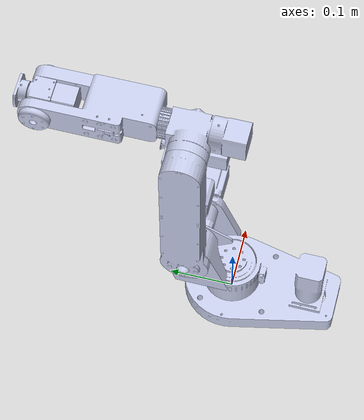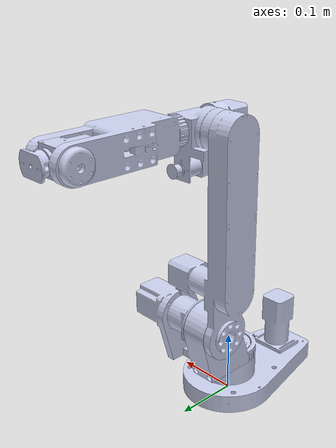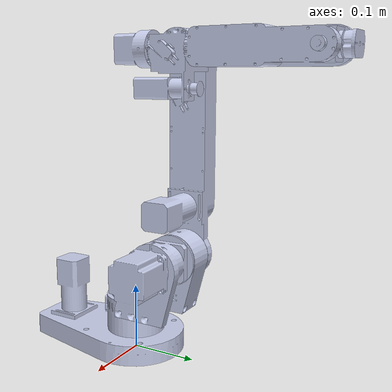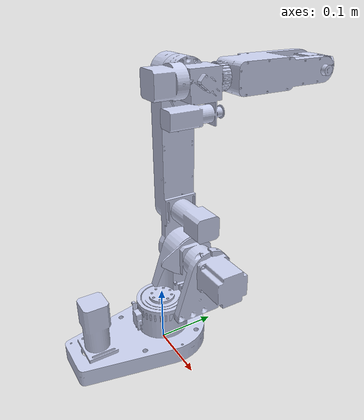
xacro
<?xml version="1.0"?>
<robot xmlns:xacro="http://www.ros.org/wiki/xacro" name="AR4">
    <xacro:arg name="initial_positions_file" default="initial_positions.yaml" />

    <!-- Import AR4 urdf file -->
    <xacro:include filename="$(find ar4_description)/urdf/ar4.urdf.xacro" />

    <!-- Import control_xacro -->
    <xacro:include filename="AR4.ros2_control.xacro" />

    <xacro:AR4_ros2_control name="FakeSystem" initial_positions_file="$(arg initial_positions_file)"/>

</robot>

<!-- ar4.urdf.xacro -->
<robot name="AR4" xmlns:xacro="http://www.ros.org/wiki/xacro">

  <!-- Import common properties and macros -->
  <xacro:include filename="common_properties.xacro" />

  <!-- Import arm description -->
  <xacro:include filename="arm.xacro" />

  <gazebo>
    <plugin
        filename="gz_ros2_control-system"
        name="gz_ros2_control::GazeboSimROS2ControlPlugin">
      <parameters>$(find ar4_description)/config/controllers.yaml</parameters>
    </plugin>
  </gazebo>

  <xacro:arg name="is_gazebo_sim" default="true"/>
  <xacro:include filename="$(find ar4_description)/urdf/AR4.ros2_control.xacro" />
  <xacro:arduinobot_ros2_control is_gazebo_sim="$(arg is_gazebo_sim)"/>

</robot>

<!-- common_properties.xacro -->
<robot xmlns:xacro="http://www.ros.org/wiki/xacro">

  <xacro:property name="PI" value="3.14159"/>
  <xacro:property name="effort" value="30.0"/>
  <xacro:property name="velocity" value="10.0"/>
  <xacro:arg name="gazebo" default="true"/>

  <material name="grey">
    <color rgba="0.79216 0.81961 0.93333 1" />
  </material>

  <material name="blue">
    <color rgba="0 0 0.5 1" />
  </material>

  <!-- ═══════════════════════════════════════════════════════
       MACROS
       ═══════════════════════════════════════════════════════ -->
  <xacro:macro name="add_link" params="name mass
        inr_xyz inr_rpy vis_xyz vis_rpy col_xyz
        col_rpy ixx ixy ixz iyy iyz izz">
    <link name="${name}">
      <inertial>
        <origin xyz="${inr_xyz}" rpy="${inr_rpy}" />
        <mass value="${mass}" />
        <inertia ixx="${ixx}" ixy="${ixy}" ixz="${ixz}"
                 iyy="${iyy}" iyz="${iyz}"
                 izz="${izz}" />
      </inertial>
      <visual>
        <origin xyz="${vis_xyz}" rpy="${vis_rpy}" />
        <geometry>
          <mesh filename="package://ar4_description/meshes/visual/${name}.STL" />
        </geometry>
        <material name="grey" />
      </visual>
      <collision>
        <origin xyz="${col_xyz}" rpy="${col_rpy}" />
        <geometry>
          <mesh filename="package://ar4_description/meshes/collision/${name}.STL" />
        </geometry>
      </collision>
    </link>
  </xacro:macro>

  <xacro:macro name="joint_revolute" params="name parent child origin_xyz origin_rpy axis_xyz limit_lower limit_upper limit_effort limit_velocity">
    <joint name="${name}" type="revolute">
      <origin xyz="${origin_xyz}" rpy="${origin_rpy}" />
      <parent link="${parent}" />
      <child link="${child}" />
      <axis xyz="${axis_xyz}" />
      <limit lower="${limit_lower}" upper="${limit_upper}"
             effort="${limit_effort}" velocity="${limit_velocity}" />
    </joint>
  </xacro:macro>

</robot>

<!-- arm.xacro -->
<robot xmlns:xacro="http://www.ros.org/wiki/xacro">

  <!-- ═══════════════════════════════════════════════════════
       WORLD LINK + FIXED BASE
       ═══════════════════════════════════════════════════════ -->
  <link name="world"/>

  <joint name="world_joint" type="fixed">
    <origin xyz="0 0 0" rpy="0 0 ${PI/2}"/>
    <parent link="world"/>
    <child link="base_link"/>
  </joint>

  <!-- ═══════════════════════════════════════════════════════
       LINKS
       ═══════════════════════════════════════════════════════ -->
  <xacro:add_link name="base_link" mass="0.97407"
        inr_xyz="-0.039732 -9.8037E-07 0.023083" inr_rpy="0 0 0"
        vis_xyz="0 0 0.02" vis_rpy="0 0 0"
        col_xyz="0 0 0" col_rpy="0 0 0"
        ixx="0.0010955" ixy="-4.0431E-07" ixz="2.784E-06"
        iyy="0.00185"   iyz="-6.8569E-08"
        izz="0.0026765" />

  <xacro:add_link name="1st_Link" mass="0.71612"
        inr_xyz="0.053197 -0.026774 0.045798" inr_rpy="0 0 0"
        vis_xyz="0 0 0" vis_rpy="0 0 0"
        col_xyz="0 0 0" col_rpy="0 0 0"
        ixx="0.00047298" ixy="7.4582E-06" ixz="-3.5739E-05"
        iyy="0.00066757" iyz="2.1083E-06"
        izz="0.00047614" />

  <xacro:joint_revolute name="Joint_0" parent="base_link" child="1st_Link"
    origin_xyz="0 0 0.0814" origin_rpy="0 0 0"
    axis_xyz="0 0 -1" limit_lower="-2.9671" limit_upper="2.9671"
    limit_effort="4" limit_velocity="3.1" />

  <xacro:add_link name="2nd_Link" mass="0.56391"
        inr_xyz="-0.00034194 -0.12187 0.0084113" inr_rpy="0 0 0"
        vis_xyz="0 0 0" vis_rpy="0 0 0"
        col_xyz="0 0 0" col_rpy="0 0 0"
        ixx="0.0025702" ixy="4.6265E-06" ixz="-6.9851E-10"
        iyy="0.00021525" iyz="5.0969E-08"
        izz="0.0027115" />

  <xacro:joint_revolute name="Joint_1" parent="1st_Link" child="2nd_Link"
    origin_xyz="0.064201 0.03096 0.069869" origin_rpy="-1.5708 0 0"
    axis_xyz="0 0 1" limit_lower="-0.733" limit_upper="1.5708"
    limit_effort="57" limit_velocity="0.63" />

  <xacro:add_link name="3rd_Link" mass="0.23454"
        inr_xyz="0.0004202 0.019335 -0.073118" inr_rpy="0 0 0"
        vis_xyz="0 0 0" vis_rpy="0 0 0"
        col_xyz="0 0 0" col_rpy="0 0 0"
        ixx="5.9577E-05" ixy="-5.1225E-07" ixz="-2.212E-06"
        iyy="7.6708E-05" iyz="-6.5299E-08"
        izz="8.0525E-05" />

  <xacro:joint_revolute name="Joint_2" parent="2nd_Link" child="3rd_Link"
    origin_xyz="-5.5893E-05 -0.30501 0.049315" origin_rpy="0 0 0"
    axis_xyz="0 0 1" limit_lower="-1.5533" limit_upper="0.9076"
    limit_effort="20" limit_velocity="0.63" />

  <xacro:add_link name="4th_Link" mass="0.37898"
        inr_xyz="-0.00018344 -0.001475 0.15428" inr_rpy="0 0 0"
        vis_xyz="0 0 0" vis_rpy="0 0 0"
        col_xyz="0 0 0" col_rpy="0 0 0"
        ixx="0.00061231" ixy="2.1902E-07" ixz="-3.0125E-07"
        iyy="0.00064923" iyz="4.9052E-07"
        izz="0.00010656" />

  <xacro:joint_revolute name="Joint_3" parent="3rd_Link" child="4th_Link"
    origin_xyz="-0.078271 0 -0.086625" origin_rpy="-1.5708 0 -1.5708"
    axis_xyz="0 0 -1" limit_lower="-2.8798" limit_upper="2.8798"
    limit_effort="1.6" limit_velocity="2" />

  <xacro:add_link name="5th_Link" mass="0.12943"
        inr_xyz="-0.011337 1.1704E-05 -0.040849" inr_rpy="0 0 0"
        vis_xyz="0 0 0" vis_rpy="0 0 0"
        col_xyz="0 0 0" col_rpy="0 0 ${-PI/2.0}"
        ixx="2.3634E-05" ixy="3.2989E-09" ixz="-4.8512E-09"
        iyy="2.198E-05" iyz="7.5032E-09"
        izz="2.6067E-05" />

  <xacro:joint_revolute name="Joint_4" parent="4th_Link" child="5th_Link"
    origin_xyz="0 -0.044198 0.3003" origin_rpy="1.5708 -1.5708 0"
    axis_xyz="0 0 -1" limit_lower="-1.8326" limit_upper="1.8326"
    limit_effort="81" limit_velocity="0.16" />

  <xacro:add_link name="6th_Link" mass="0.013863"
        inr_xyz="1.6473E-09 2.9288E-10 -0.0068568" inr_rpy="0 0 0"
        vis_xyz="0 0 0" vis_rpy="0 0 0"
        col_xyz="0 0 0" col_rpy="0 0 0"
        ixx="1.7157E-06" ixy="-3.0585E-13" ixz="-6.3369E-09"
        iyy="1.3596E-06" iyz="5.7102E-14"
        izz="2.4332E-06" />

  <xacro:joint_revolute name="Joint_5" parent="5th_Link" child="6th_Link"
    origin_xyz="0.0359 0 -0.045781" origin_rpy="1.5708 0 1.5708"
    axis_xyz="0 0 1" limit_lower="-2.7053" limit_upper="2.7053"
    limit_effort="2.4" limit_velocity="1.65" />

    <link name="tool_link" />
    <joint name="hand_tool_joint" type="fixed">
        <parent link="6th_Link" />
        <child link="tool_link" />
        <origin xyz="0 0 0" rpy="0 0 0" />
    </joint>
</robot>
